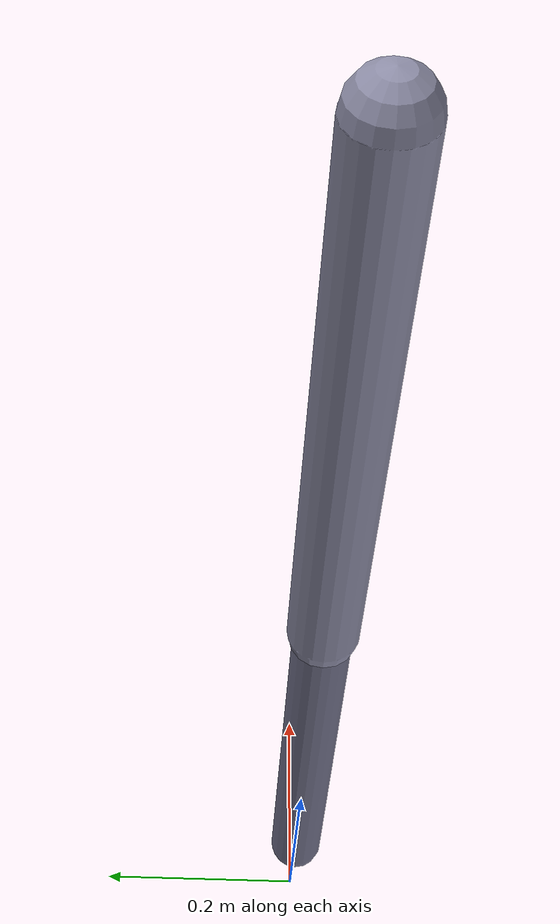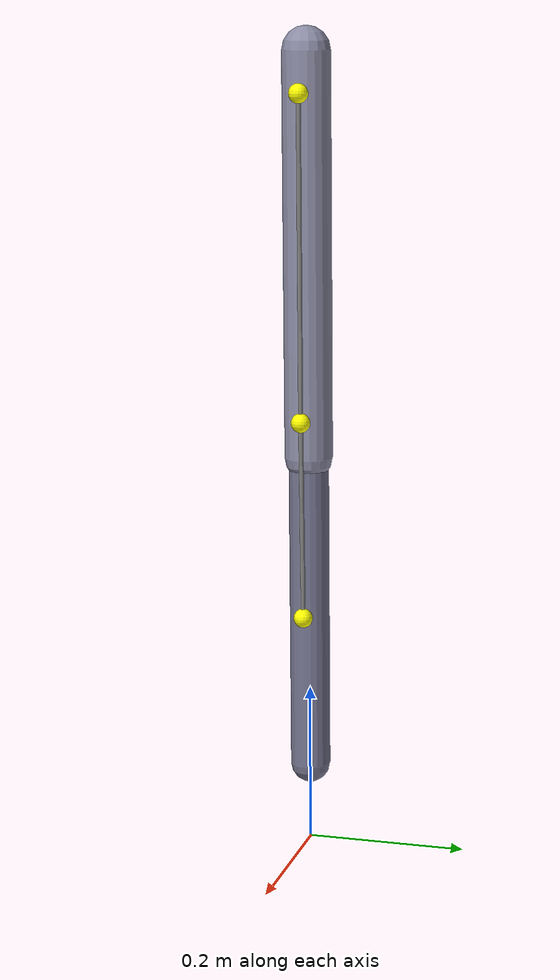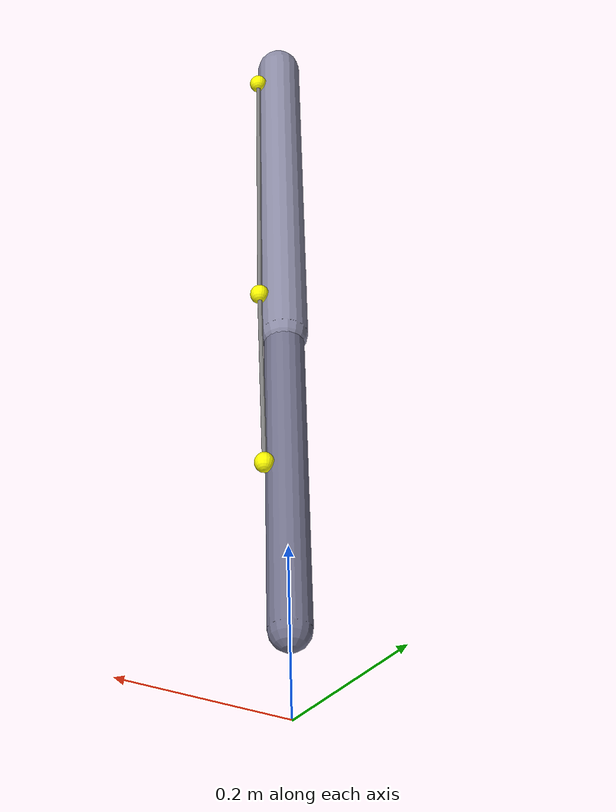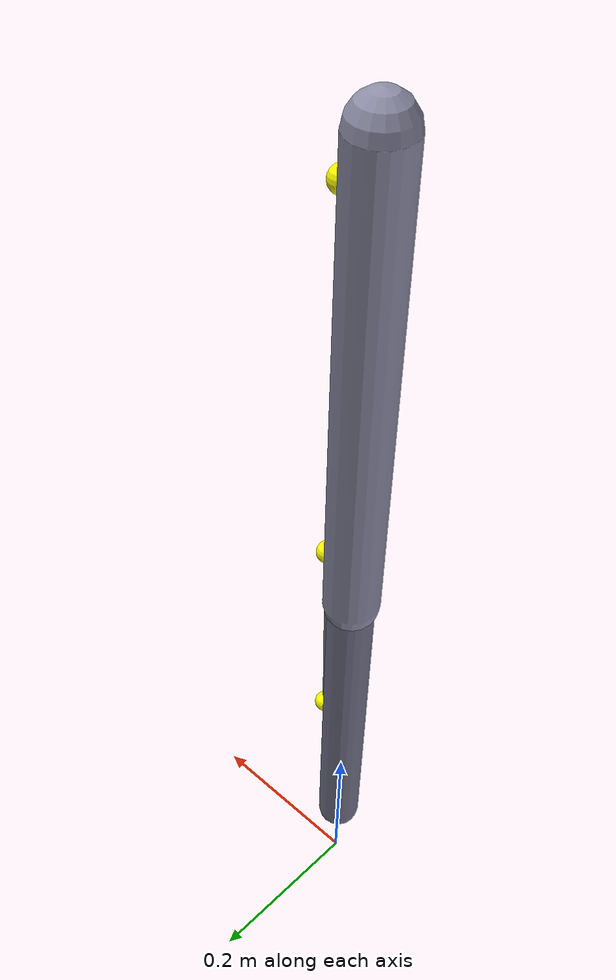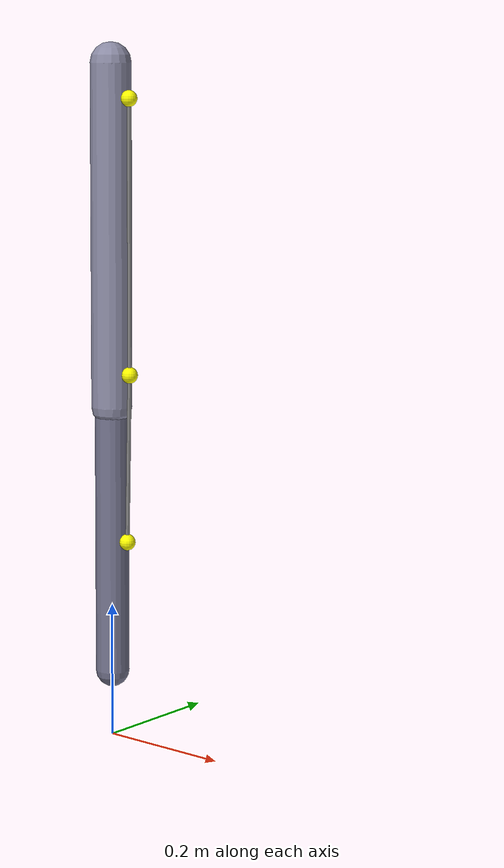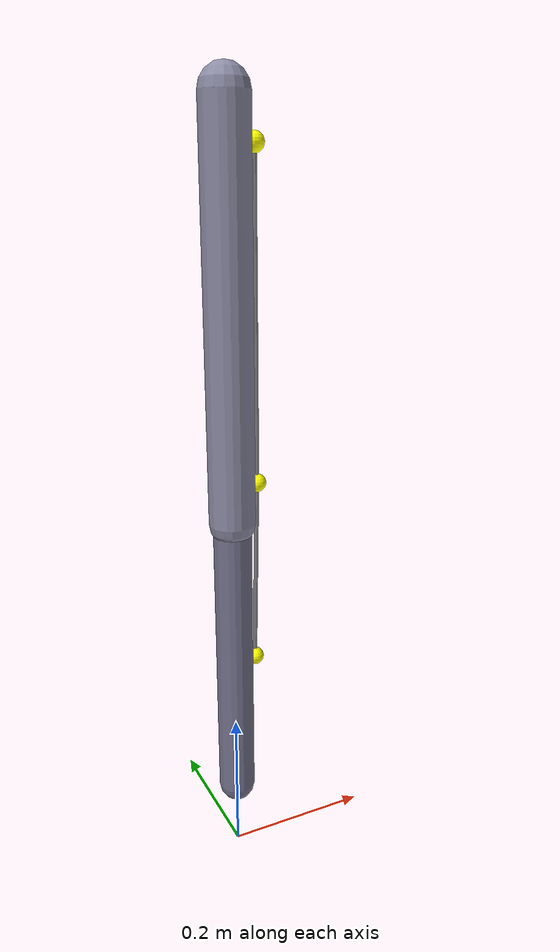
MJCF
<mujoco model="spatial-path">
  <option gravity="0 0 -9.81" timestep="0.002"/>
  <compiler angle="radian"/>

  <worldbody>
    <body name="upper" pos="0 0 1.0">
      <joint name="shoulder" type="hinge" axis="0 1 0" damping="0.3" ref="0.8"/>
      <geom name="upper_geom" type="capsule" fromto="0 0 0 0 0 -0.5"
            size="0.03" mass="1.0" rgba="0.55 0.55 0.65 1"/>
      <site name="s_origin" pos="0.035 0 -0.05" size="0.012"
            rgba="1 1 0 1"/>
      <site name="s_mid" pos="0.035 0 -0.45" size="0.012"
            rgba="1 1 0 1"/>
      <body name="lower" pos="0 0 -0.5">
        <joint name="elbow" type="hinge" axis="0 1 0" damping="0.3" ref="-0.5"/>
        <geom name="lower_geom" type="capsule" fromto="0 0 0 0 0 -0.4"
              size="0.025" mass="0.5" rgba="0.45 0.45 0.55 1"/>
        <site name="s_insert" pos="0.03 0 -0.2" size="0.012"
              rgba="1 1 0 1"/>
      </body>
    </body>
  </worldbody>

  <tendon>
    <spatial name="path" stiffness="30" damping="1">
      <site site="s_origin"/>
      <site site="s_mid"/>
      <site site="s_insert"/>
    </spatial>
  </tendon>

  <sensor>
    <tendonpos name="ten_pos" tendon="path"/>
    <tendonvel name="ten_vel" tendon="path"/>
  </sensor>
</mujoco>
